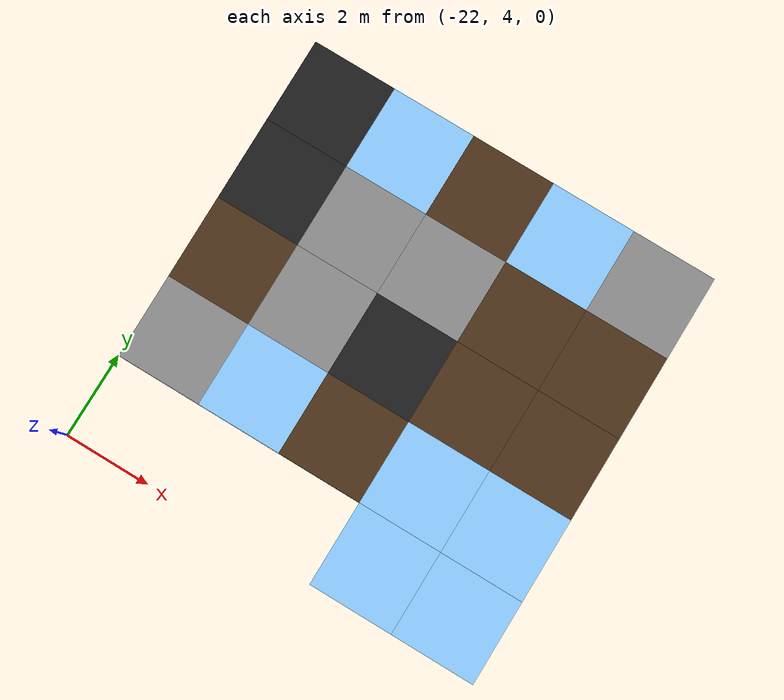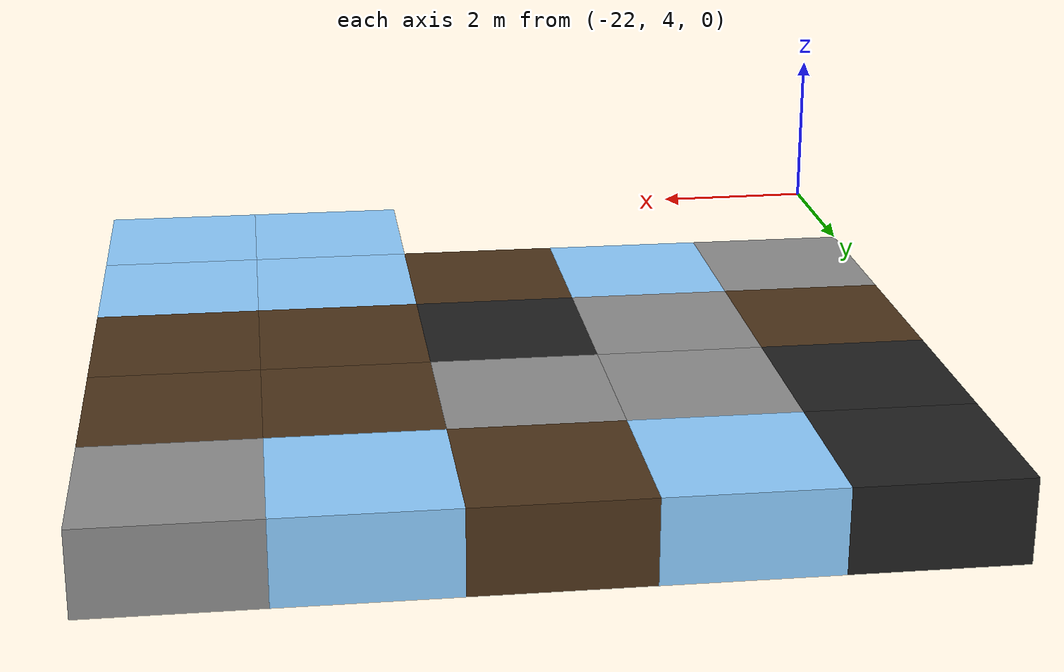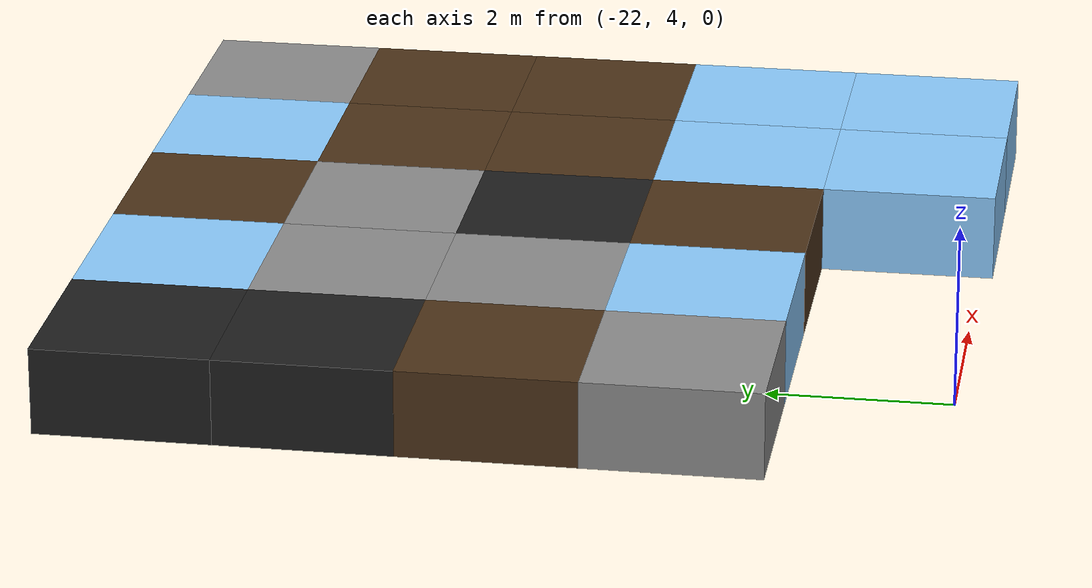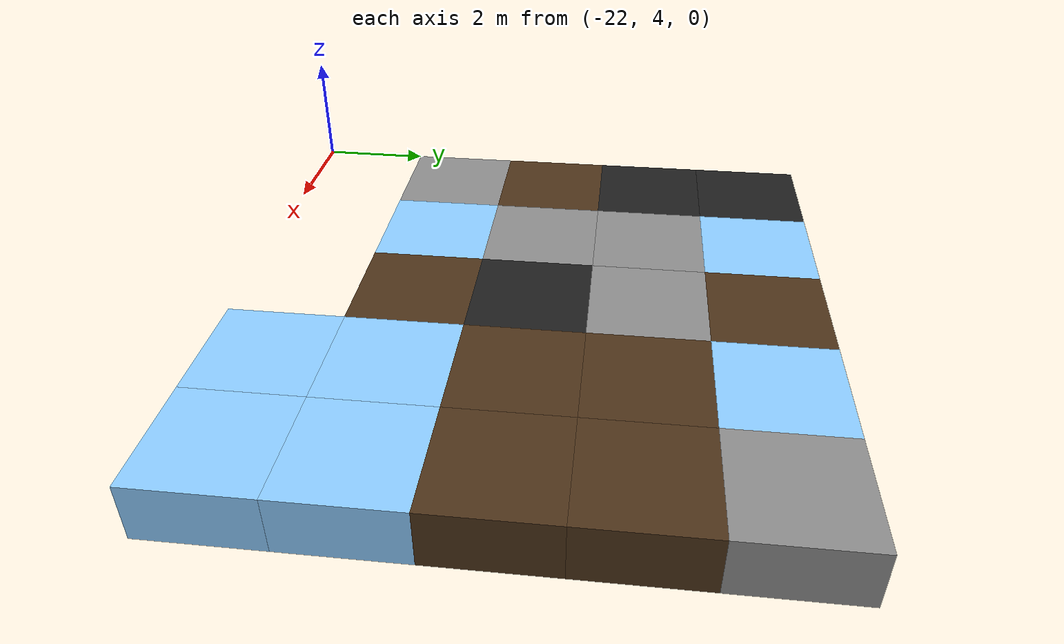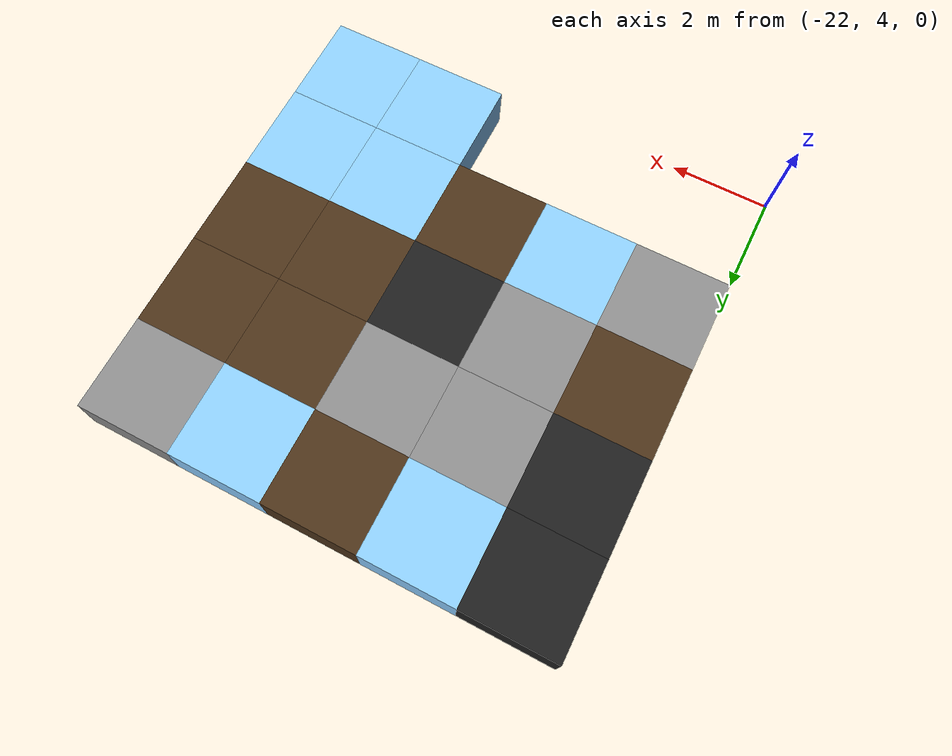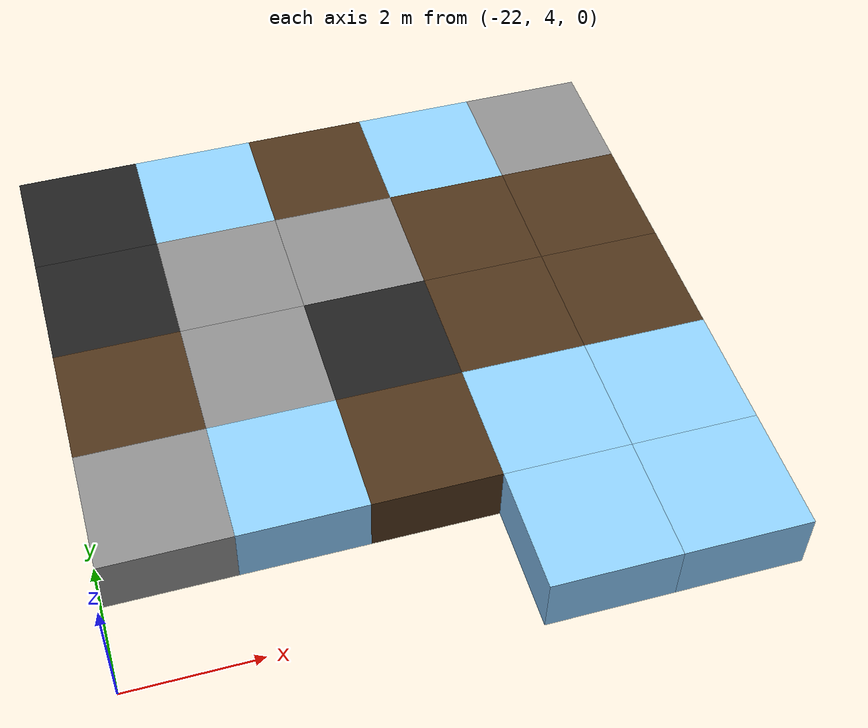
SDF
<sdf version="1.5">
 <world name="squares_example">
  <model name="tile_8_18">
   <static>true</static>
   <pose>-15.000 5.000 -0.500 0 0 0</pose>
   <link name="link">
    <collision name="col">
     <geometry><box><size>2.0 2.0 1.0</size></box></geometry>
     <surface>
      <friction>
       <ode><mu>0.03</mu><mu2>0.02</mu2><fdir1>1 0 0</fdir1><slip1>0.03</slip1><slip2>0.03</slip2></ode>
       <torsional>
        <coefficient>0.005</coefficient>
        <use_patch_radius>false</use_patch_radius>
        <surface_radius>0.12</surface_radius>
        <ode><slip>0.01</slip></ode>
       </torsional>
      </friction>
      <bounce><restitution_coefficient>0.0</restitution_coefficient><threshold>0.1</threshold></bounce>
      <contact>
       <ode><kp>10000000.0</kp><kd>1000.0</kd><max_vel>0.01</max_vel><min_depth>0.0</min_depth></ode>
      </contact>
     </surface>
    </collision>
    <visual name="visual">
     <geometry><box><size>2.0 2.0 1.0</size></box></geometry>
     <material>
      <diffuse>0.55 0.80 1.00 1</diffuse>
      <ambient>0 0 0 0</ambient>
      <specular>0 0 0 1</specular>
      <emissive>0 0 0 1</emissive>
     </material>
    </visual>
   </link>
  </model>
  <model name="tile_9_18">
   <static>true</static>
   <pose>-13.000 5.000 -0.500 0 0 0</pose>
   <link name="link">
    <collision name="col">
     <geometry><box><size>2.0 2.0 1.0</size></box></geometry>
     <surface>
      <friction>
       <ode><mu>0.03</mu><mu2>0.02</mu2><fdir1>1 0 0</fdir1><slip1>0.03</slip1><slip2>0.03</slip2></ode>
       <torsional>
        <coefficient>0.005</coefficient>
        <use_patch_radius>false</use_patch_radius>
        <surface_radius>0.12</surface_radius>
        <ode><slip>0.01</slip></ode>
       </torsional>
      </friction>
      <bounce><restitution_coefficient>0.0</restitution_coefficient><threshold>0.1</threshold></bounce>
      <contact>
       <ode><kp>10000000.0</kp><kd>1000.0</kd><max_vel>0.01</max_vel><min_depth>0.0</min_depth></ode>
      </contact>
     </surface>
    </collision>
    <visual name="visual">
     <geometry><box><size>2.0 2.0 1.0</size></box></geometry>
     <material>
      <diffuse>0.55 0.80 1.00 1</diffuse>
      <ambient>0 0 0 0</ambient>
      <specular>0 0 0 1</specular>
      <emissive>0 0 0 1</emissive>
     </material>
    </visual>
   </link>
  </model>
  <model name="tile_5_19">
   <static>true</static>
   <pose>-21.000 7.000 -0.500 0 0 0</pose>
   <link name="link">
    <collision name="col">
     <geometry><box><size>2.0 2.0 1.0</size></box></geometry>
     <surface>
      <friction>
       <ode><mu>0.8</mu><mu2>0.3</mu2><fdir1>1 0 0</fdir1><slip1>0.0</slip1><slip2>0.0</slip2></ode>
       <torsional>
        <coefficient>0.03</coefficient>
        <use_patch_radius>false</use_patch_radius>
        <surface_radius>0.12</surface_radius>
        <ode><slip>0.0</slip></ode>
       </torsional>
      </friction>
      <bounce><restitution_coefficient>0.0</restitution_coefficient><threshold>0.1</threshold></bounce>
      <contact>
       <ode><kp>10000000000.0</kp><kd>10000000.0</kd><max_vel>0.01</max_vel><min_depth>0.0</min_depth></ode>
      </contact>
     </surface>
    </collision>
    <visual name="visual">
     <geometry><box><size>2.0 2.0 1.0</size></box></geometry>
     <material>
      <diffuse>0.55 0.55 0.55 1</diffuse>
      <ambient>0 0 0 0</ambient>
      <specular>0 0 0 1</specular>
      <emissive>0 0 0 1</emissive>
     </material>
    </visual>
   </link>
  </model>
  <model name="tile_6_19">
   <static>true</static>
   <pose>-19.000 7.000 -0.500 0 0 0</pose>
   <link name="link">
    <collision name="col">
     <geometry><box><size>2.0 2.0 1.0</size></box></geometry>
     <surface>
      <friction>
       <ode><mu>0.03</mu><mu2>0.02</mu2><fdir1>1 0 0</fdir1><slip1>0.03</slip1><slip2>0.03</slip2></ode>
       <torsional>
        <coefficient>0.005</coefficient>
        <use_patch_radius>false</use_patch_radius>
        <surface_radius>0.12</surface_radius>
        <ode><slip>0.01</slip></ode>
       </torsional>
      </friction>
      <bounce><restitution_coefficient>0.0</restitution_coefficient><threshold>0.1</threshold></bounce>
      <contact>
       <ode><kp>10000000.0</kp><kd>1000.0</kd><max_vel>0.01</max_vel><min_depth>0.0</min_depth></ode>
      </contact>
     </surface>
    </collision>
    <visual name="visual">
     <geometry><box><size>2.0 2.0 1.0</size></box></geometry>
     <material>
      <diffuse>0.55 0.80 1.00 1</diffuse>
      <ambient>0 0 0 0</ambient>
      <specular>0 0 0 1</specular>
      <emissive>0 0 0 1</emissive>
     </material>
    </visual>
   </link>
  </model>
  <model name="tile_7_19">
   <static>true</static>
   <pose>-17.000 7.000 -0.500 0 0 0</pose>
   <link name="link">
    <collision name="col">
     <geometry><box><size>2.0 2.0 1.0</size></box></geometry>
     <surface>
      <friction>
       <ode><mu>0.6</mu><mu2>0.4</mu2><fdir1>1 0 0</fdir1><slip1>0.08</slip1><slip2>0.08</slip2></ode>
       <torsional>
        <coefficient>0.03</coefficient>
        <use_patch_radius>false</use_patch_radius>
        <surface_radius>0.12</surface_radius>
        <ode><slip>0.0</slip></ode>
       </torsional>
      </friction>
      <bounce><restitution_coefficient>0.0</restitution_coefficient><threshold>0.1</threshold></bounce>
      <contact>
       <ode><kp>1000000.0</kp><kd>10000.0</kd><max_vel>0.01</max_vel><min_depth>0.0</min_depth></ode>
      </contact>
     </surface>
    </collision>
    <visual name="visual">
     <geometry><box><size>2.0 2.0 1.0</size></box></geometry>
     <material>
      <diffuse>0.30 0.20 0.10 1</diffuse>
      <ambient>0 0 0 0</ambient>
      <specular>0 0 0 1</specular>
      <emissive>0 0 0 1</emissive>
     </material>
    </visual>
   </link>
  </model>
  <model name="tile_8_19">
   <static>true</static>
   <pose>-15.000 7.000 -0.500 0 0 0</pose>
   <link name="link">
    <collision name="col">
     <geometry><box><size>2.0 2.0 1.0</size></box></geometry>
     <surface>
      <friction>
       <ode><mu>0.03</mu><mu2>0.02</mu2><fdir1>1 0 0</fdir1><slip1>0.03</slip1><slip2>0.03</slip2></ode>
       <torsional>
        <coefficient>0.005</coefficient>
        <use_patch_radius>false</use_patch_radius>
        <surface_radius>0.12</surface_radius>
        <ode><slip>0.01</slip></ode>
       </torsional>
      </friction>
      <bounce><restitution_coefficient>0.0</restitution_coefficient><threshold>0.1</threshold></bounce>
      <contact>
       <ode><kp>10000000.0</kp><kd>1000.0</kd><max_vel>0.01</max_vel><min_depth>0.0</min_depth></ode>
      </contact>
     </surface>
    </collision>
    <visual name="visual">
     <geometry><box><size>2.0 2.0 1.0</size></box></geometry>
     <material>
      <diffuse>0.55 0.80 1.00 1</diffuse>
      <ambient>0 0 0 0</ambient>
      <specular>0 0 0 1</specular>
      <emissive>0 0 0 1</emissive>
     </material>
    </visual>
   </link>
  </model>
  <model name="tile_9_19">
   <static>true</static>
   <pose>-13.000 7.000 -0.500 0 0 0</pose>
   <link name="link">
    <collision name="col">
     <geometry><box><size>2.0 2.0 1.0</size></box></geometry>
     <surface>
      <friction>
       <ode><mu>0.03</mu><mu2>0.02</mu2><fdir1>1 0 0</fdir1><slip1>0.03</slip1><slip2>0.03</slip2></ode>
       <torsional>
        <coefficient>0.005</coefficient>
        <use_patch_radius>false</use_patch_radius>
        <surface_radius>0.12</surface_radius>
        <ode><slip>0.01</slip></ode>
       </torsional>
      </friction>
      <bounce><restitution_coefficient>0.0</restitution_coefficient><threshold>0.1</threshold></bounce>
      <contact>
       <ode><kp>10000000.0</kp><kd>1000.0</kd><max_vel>0.01</max_vel><min_depth>0.0</min_depth></ode>
      </contact>
     </surface>
    </collision>
    <visual name="visual">
     <geometry><box><size>2.0 2.0 1.0</size></box></geometry>
     <material>
      <diffuse>0.55 0.80 1.00 1</diffuse>
      <ambient>0 0 0 0</ambient>
      <specular>0 0 0 1</specular>
      <emissive>0 0 0 1</emissive>
     </material>
    </visual>
   </link>
  </model>
  <model name="tile_5_20">
   <static>true</static>
   <pose>-21.000 9.000 -0.500 0 0 0</pose>
   <link name="link">
    <collision name="col">
     <geometry><box><size>2.0 2.0 1.0</size></box></geometry>
     <surface>
      <friction>
       <ode><mu>0.6</mu><mu2>0.4</mu2><fdir1>1 0 0</fdir1><slip1>0.08</slip1><slip2>0.08</slip2></ode>
       <torsional>
        <coefficient>0.03</coefficient>
        <use_patch_radius>false</use_patch_radius>
        <surface_radius>0.12</surface_radius>
        <ode><slip>0.0</slip></ode>
       </torsional>
      </friction>
      <bounce><restitution_coefficient>0.0</restitution_coefficient><threshold>0.1</threshold></bounce>
      <contact>
       <ode><kp>1000000.0</kp><kd>10000.0</kd><max_vel>0.01</max_vel><min_depth>0.0</min_depth></ode>
      </contact>
     </surface>
    </collision>
    <visual name="visual">
     <geometry><box><size>2.0 2.0 1.0</size></box></geometry>
     <material>
      <diffuse>0.30 0.20 0.10 1</diffuse>
      <ambient>0 0 0 0</ambient>
      <specular>0 0 0 1</specular>
      <emissive>0 0 0 1</emissive>
     </material>
    </visual>
   </link>
  </model>
  <model name="tile_6_20">
   <static>true</static>
   <pose>-19.000 9.000 -0.500 0 0 0</pose>
   <link name="link">
    <collision name="col">
     <geometry><box><size>2.0 2.0 1.0</size></box></geometry>
     <surface>
      <friction>
       <ode><mu>0.8</mu><mu2>0.3</mu2><fdir1>1 0 0</fdir1><slip1>0.0</slip1><slip2>0.0</slip2></ode>
       <torsional>
        <coefficient>0.03</coefficient>
        <use_patch_radius>false</use_patch_radius>
        <surface_radius>0.12</surface_radius>
        <ode><slip>0.0</slip></ode>
       </torsional>
      </friction>
      <bounce><restitution_coefficient>0.0</restitution_coefficient><threshold>0.1</threshold></bounce>
      <contact>
       <ode><kp>10000000000.0</kp><kd>10000000.0</kd><max_vel>0.01</max_vel><min_depth>0.0</min_depth></ode>
      </contact>
     </surface>
    </collision>
    <visual name="visual">
     <geometry><box><size>2.0 2.0 1.0</size></box></geometry>
     <material>
      <diffuse>0.55 0.55 0.55 1</diffuse>
      <ambient>0 0 0 0</ambient>
      <specular>0 0 0 1</specular>
      <emissive>0 0 0 1</emissive>
     </material>
    </visual>
   </link>
  </model>
  <model name="tile_7_20">
   <static>true</static>
   <pose>-17.000 9.000 -0.500 0 0 0</pose>
   <link name="link">
    <collision name="col">
     <geometry><box><size>2.0 2.0 1.0</size></box></geometry>
     <surface>
      <friction>
       <ode><mu>0.4</mu><mu2>0.15</mu2><fdir1>1 0 0</fdir1><slip1>0.0</slip1><slip2>0.0</slip2></ode>
       <torsional>
        <coefficient>0.03</coefficient>
        <use_patch_radius>false</use_patch_radius>
        <surface_radius>0.12</surface_radius>
        <ode><slip>0.0</slip></ode>
       </torsional>
      </friction>
      <bounce><restitution_coefficient>0.0</restitution_coefficient><threshold>0.1</threshold></bounce>
      <contact>
       <ode><kp>1000000000.0</kp><kd>1000000.0</kd><max_vel>0.01</max_vel><min_depth>0.0</min_depth></ode>
      </contact>
     </surface>
    </collision>
    <visual name="visual">
     <geometry><box><size>2.0 2.0 1.0</size></box></geometry>
     <material>
      <diffuse>0.12 0.12 0.12 1</diffuse>
      <ambient>0 0 0 0</ambient>
      <specular>0 0 0 1</specular>
      <emissive>0 0 0 1</emissive>
     </material>
    </visual>
   </link>
  </model>
  <model name="tile_8_20">
   <static>true</static>
   <pose>-15.000 9.000 -0.500 0 0 0</pose>
   <link name="link">
    <collision name="col">
     <geometry><box><size>2.0 2.0 1.0</size></box></geometry>
     <surface>
      <friction>
       <ode><mu>0.6</mu><mu2>0.4</mu2><fdir1>1 0 0</fdir1><slip1>0.08</slip1><slip2>0.08</slip2></ode>
       <torsional>
        <coefficient>0.03</coefficient>
        <use_patch_radius>false</use_patch_radius>
        <surface_radius>0.12</surface_radius>
        <ode><slip>0.0</slip></ode>
       </torsional>
      </friction>
      <bounce><restitution_coefficient>0.0</restitution_coefficient><threshold>0.1</threshold></bounce>
      <contact>
       <ode><kp>1000000.0</kp><kd>10000.0</kd><max_vel>0.01</max_vel><min_depth>0.0</min_depth></ode>
      </contact>
     </surface>
    </collision>
    <visual name="visual">
     <geometry><box><size>2.0 2.0 1.0</size></box></geometry>
     <material>
      <diffuse>0.30 0.20 0.10 1</diffuse>
      <ambient>0 0 0 0</ambient>
      <specular>0 0 0 1</specular>
      <emissive>0 0 0 1</emissive>
     </material>
    </visual>
   </link>
  </model>
  <model name="tile_9_20">
   <static>true</static>
   <pose>-13.000 9.000 -0.500 0 0 0</pose>
   <link name="link">
    <collision name="col">
     <geometry><box><size>2.0 2.0 1.0</size></box></geometry>
     <surface>
      <friction>
       <ode><mu>0.6</mu><mu2>0.4</mu2><fdir1>1 0 0</fdir1><slip1>0.08</slip1><slip2>0.08</slip2></ode>
       <torsional>
        <coefficient>0.03</coefficient>
        <use_patch_radius>false</use_patch_radius>
        <surface_radius>0.12</surface_radius>
        <ode><slip>0.0</slip></ode>
       </torsional>
      </friction>
      <bounce><restitution_coefficient>0.0</restitution_coefficient><threshold>0.1</threshold></bounce>
      <contact>
       <ode><kp>1000000.0</kp><kd>10000.0</kd><max_vel>0.01</max_vel><min_depth>0.0</min_depth></ode>
      </contact>
     </surface>
    </collision>
    <visual name="visual">
     <geometry><box><size>2.0 2.0 1.0</size></box></geometry>
     <material>
      <diffuse>0.30 0.20 0.10 1</diffuse>
      <ambient>0 0 0 0</ambient>
      <specular>0 0 0 1</specular>
      <emissive>0 0 0 1</emissive>
     </material>
    </visual>
   </link>
  </model>
  <model name="tile_5_21">
   <static>true</static>
   <pose>-21.000 11.000 -0.500 0 0 0</pose>
   <link name="link">
    <collision name="col">
     <geometry><box><size>2.0 2.0 1.0</size></box></geometry>
     <surface>
      <friction>
       <ode><mu>0.4</mu><mu2>0.15</mu2><fdir1>1 0 0</fdir1><slip1>0.0</slip1><slip2>0.0</slip2></ode>
       <torsional>
        <coefficient>0.03</coefficient>
        <use_patch_radius>false</use_patch_radius>
        <surface_radius>0.12</surface_radius>
        <ode><slip>0.0</slip></ode>
       </torsional>
      </friction>
      <bounce><restitution_coefficient>0.0</restitution_coefficient><threshold>0.1</threshold></bounce>
      <contact>
       <ode><kp>1000000000.0</kp><kd>1000000.0</kd><max_vel>0.01</max_vel><min_depth>0.0</min_depth></ode>
      </contact>
     </surface>
    </collision>
    <visual name="visual">
     <geometry><box><size>2.0 2.0 1.0</size></box></geometry>
     <material>
      <diffuse>0.12 0.12 0.12 1</diffuse>
      <ambient>0 0 0 0</ambient>
      <specular>0 0 0 1</specular>
      <emissive>0 0 0 1</emissive>
     </material>
    </visual>
   </link>
  </model>
  <model name="tile_6_21">
   <static>true</static>
   <pose>-19.000 11.000 -0.500 0 0 0</pose>
   <link name="link">
    <collision name="col">
     <geometry><box><size>2.0 2.0 1.0</size></box></geometry>
     <surface>
      <friction>
       <ode><mu>0.8</mu><mu2>0.3</mu2><fdir1>1 0 0</fdir1><slip1>0.0</slip1><slip2>0.0</slip2></ode>
       <torsional>
        <coefficient>0.03</coefficient>
        <use_patch_radius>false</use_patch_radius>
        <surface_radius>0.12</surface_radius>
        <ode><slip>0.0</slip></ode>
       </torsional>
      </friction>
      <bounce><restitution_coefficient>0.0</restitution_coefficient><threshold>0.1</threshold></bounce>
      <contact>
       <ode><kp>10000000000.0</kp><kd>10000000.0</kd><max_vel>0.01</max_vel><min_depth>0.0</min_depth></ode>
      </contact>
     </surface>
    </collision>
    <visual name="visual">
     <geometry><box><size>2.0 2.0 1.0</size></box></geometry>
     <material>
      <diffuse>0.55 0.55 0.55 1</diffuse>
      <ambient>0 0 0 0</ambient>
      <specular>0 0 0 1</specular>
      <emissive>0 0 0 1</emissive>
     </material>
    </visual>
   </link>
  </model>
  <model name="tile_7_21">
   <static>true</static>
   <pose>-17.000 11.000 -0.500 0 0 0</pose>
   <link name="link">
    <collision name="col">
     <geometry><box><size>2.0 2.0 1.0</size></box></geometry>
     <surface>
      <friction>
       <ode><mu>0.8</mu><mu2>0.3</mu2><fdir1>1 0 0</fdir1><slip1>0.0</slip1><slip2>0.0</slip2></ode>
       <torsional>
        <coefficient>0.03</coefficient>
        <use_patch_radius>false</use_patch_radius>
        <surface_radius>0.12</surface_radius>
        <ode><slip>0.0</slip></ode>
       </torsional>
      </friction>
      <bounce><restitution_coefficient>0.0</restitution_coefficient><threshold>0.1</threshold></bounce>
      <contact>
       <ode><kp>10000000000.0</kp><kd>10000000.0</kd><max_vel>0.01</max_vel><min_depth>0.0</min_depth></ode>
      </contact>
     </surface>
    </collision>
    <visual name="visual">
     <geometry><box><size>2.0 2.0 1.0</size></box></geometry>
     <material>
      <diffuse>0.55 0.55 0.55 1</diffuse>
      <ambient>0 0 0 0</ambient>
      <specular>0 0 0 1</specular>
      <emissive>0 0 0 1</emissive>
     </material>
    </visual>
   </link>
  </model>
  <model name="tile_8_21">
   <static>true</static>
   <pose>-15.000 11.000 -0.500 0 0 0</pose>
   <link name="link">
    <collision name="col">
     <geometry><box><size>2.0 2.0 1.0</size></box></geometry>
     <surface>
      <friction>
       <ode><mu>0.6</mu><mu2>0.4</mu2><fdir1>1 0 0</fdir1><slip1>0.08</slip1><slip2>0.08</slip2></ode>
       <torsional>
        <coefficient>0.03</coefficient>
        <use_patch_radius>false</use_patch_radius>
        <surface_radius>0.12</surface_radius>
        <ode><slip>0.0</slip></ode>
       </torsional>
      </friction>
      <bounce><restitution_coefficient>0.0</restitution_coefficient><threshold>0.1</threshold></bounce>
      <contact>
       <ode><kp>1000000.0</kp><kd>10000.0</kd><max_vel>0.01</max_vel><min_depth>0.0</min_depth></ode>
      </contact>
     </surface>
    </collision>
    <visual name="visual">
     <geometry><box><size>2.0 2.0 1.0</size></box></geometry>
     <material>
      <diffuse>0.30 0.20 0.10 1</diffuse>
      <ambient>0 0 0 0</ambient>
      <specular>0 0 0 1</specular>
      <emissive>0 0 0 1</emissive>
     </material>
    </visual>
   </link>
  </model>
  <model name="tile_9_21">
   <static>true</static>
   <pose>-13.000 11.000 -0.500 0 0 0</pose>
   <link name="link">
    <collision name="col">
     <geometry><box><size>2.0 2.0 1.0</size></box></geometry>
     <surface>
      <friction>
       <ode><mu>0.6</mu><mu2>0.4</mu2><fdir1>1 0 0</fdir1><slip1>0.08</slip1><slip2>0.08</slip2></ode>
       <torsional>
        <coefficient>0.03</coefficient>
        <use_patch_radius>false</use_patch_radius>
        <surface_radius>0.12</surface_radius>
        <ode><slip>0.0</slip></ode>
       </torsional>
      </friction>
      <bounce><restitution_coefficient>0.0</restitution_coefficient><threshold>0.1</threshold></bounce>
      <contact>
       <ode><kp>1000000.0</kp><kd>10000.0</kd><max_vel>0.01</max_vel><min_depth>0.0</min_depth></ode>
      </contact>
     </surface>
    </collision>
    <visual name="visual">
     <geometry><box><size>2.0 2.0 1.0</size></box></geometry>
     <material>
      <diffuse>0.30 0.20 0.10 1</diffuse>
      <ambient>0 0 0 0</ambient>
      <specular>0 0 0 1</specular>
      <emissive>0 0 0 1</emissive>
     </material>
    </visual>
   </link>
  </model>
  <model name="tile_5_22">
   <static>true</static>
   <pose>-21.000 13.000 -0.500 0 0 0</pose>
   <link name="link">
    <collision name="col">
     <geometry><box><size>2.0 2.0 1.0</size></box></geometry>
     <surface>
      <friction>
       <ode><mu>0.4</mu><mu2>0.15</mu2><fdir1>1 0 0</fdir1><slip1>0.0</slip1><slip2>0.0</slip2></ode>
       <torsional>
        <coefficient>0.03</coefficient>
        <use_patch_radius>false</use_patch_radius>
        <surface_radius>0.12</surface_radius>
        <ode><slip>0.0</slip></ode>
       </torsional>
      </friction>
      <bounce><restitution_coefficient>0.0</restitution_coefficient><threshold>0.1</threshold></bounce>
      <contact>
       <ode><kp>1000000000.0</kp><kd>1000000.0</kd><max_vel>0.01</max_vel><min_depth>0.0</min_depth></ode>
      </contact>
     </surface>
    </collision>
    <visual name="visual">
     <geometry><box><size>2.0 2.0 1.0</size></box></geometry>
     <material>
      <diffuse>0.12 0.12 0.12 1</diffuse>
      <ambient>0 0 0 0</ambient>
      <specular>0 0 0 1</specular>
      <emissive>0 0 0 1</emissive>
     </material>
    </visual>
   </link>
  </model>
  <model name="tile_6_22">
   <static>true</static>
   <pose>-19.000 13.000 -0.500 0 0 0</pose>
   <link name="link">
    <collision name="col">
     <geometry><box><size>2.0 2.0 1.0</size></box></geometry>
     <surface>
      <friction>
       <ode><mu>0.03</mu><mu2>0.02</mu2><fdir1>1 0 0</fdir1><slip1>0.03</slip1><slip2>0.03</slip2></ode>
       <torsional>
        <coefficient>0.005</coefficient>
        <use_patch_radius>false</use_patch_radius>
        <surface_radius>0.12</surface_radius>
        <ode><slip>0.01</slip></ode>
       </torsional>
      </friction>
      <bounce><restitution_coefficient>0.0</restitution_coefficient><threshold>0.1</threshold></bounce>
      <contact>
       <ode><kp>10000000.0</kp><kd>1000.0</kd><max_vel>0.01</max_vel><min_depth>0.0</min_depth></ode>
      </contact>
     </surface>
    </collision>
    <visual name="visual">
     <geometry><box><size>2.0 2.0 1.0</size></box></geometry>
     <material>
      <diffuse>0.55 0.80 1.00 1</diffuse>
      <ambient>0 0 0 0</ambient>
      <specular>0 0 0 1</specular>
      <emissive>0 0 0 1</emissive>
     </material>
    </visual>
   </link>
  </model>
  <model name="tile_7_22">
   <static>true</static>
   <pose>-17.000 13.000 -0.500 0 0 0</pose>
   <link name="link">
    <collision name="col">
     <geometry><box><size>2.0 2.0 1.0</size></box></geometry>
     <surface>
      <friction>
       <ode><mu>0.6</mu><mu2>0.4</mu2><fdir1>1 0 0</fdir1><slip1>0.08</slip1><slip2>0.08</slip2></ode>
       <torsional>
        <coefficient>0.03</coefficient>
        <use_patch_radius>false</use_patch_radius>
        <surface_radius>0.12</surface_radius>
        <ode><slip>0.0</slip></ode>
       </torsional>
      </friction>
      <bounce><restitution_coefficient>0.0</restitution_coefficient><threshold>0.1</threshold></bounce>
      <contact>
       <ode><kp>1000000.0</kp><kd>10000.0</kd><max_vel>0.01</max_vel><min_depth>0.0</min_depth></ode>
      </contact>
     </surface>
    </collision>
    <visual name="visual">
     <geometry><box><size>2.0 2.0 1.0</size></box></geometry>
     <material>
      <diffuse>0.30 0.20 0.10 1</diffuse>
      <ambient>0 0 0 0</ambient>
      <specular>0 0 0 1</specular>
      <emissive>0 0 0 1</emissive>
     </material>
    </visual>
   </link>
  </model>
  <model name="tile_8_22">
   <static>true</static>
   <pose>-15.000 13.000 -0.500 0 0 0</pose>
   <link name="link">
    <collision name="col">
     <geometry><box><size>2.0 2.0 1.0</size></box></geometry>
     <surface>
      <friction>
       <ode><mu>0.03</mu><mu2>0.02</mu2><fdir1>1 0 0</fdir1><slip1>0.03</slip1><slip2>0.03</slip2></ode>
       <torsional>
        <coefficient>0.005</coefficient>
        <use_patch_radius>false</use_patch_radius>
        <surface_radius>0.12</surface_radius>
        <ode><slip>0.01</slip></ode>
       </torsional>
      </friction>
      <bounce><restitution_coefficient>0.0</restitution_coefficient><threshold>0.1</threshold></bounce>
      <contact>
       <ode><kp>10000000.0</kp><kd>1000.0</kd><max_vel>0.01</max_vel><min_depth>0.0</min_depth></ode>
      </contact>
     </surface>
    </collision>
    <visual name="visual">
     <geometry><box><size>2.0 2.0 1.0</size></box></geometry>
     <material>
      <diffuse>0.55 0.80 1.00 1</diffuse>
      <ambient>0 0 0 0</ambient>
      <specular>0 0 0 1</specular>
      <emissive>0 0 0 1</emissive>
     </material>
    </visual>
   </link>
  </model>
  <model name="tile_9_22">
   <static>true</static>
   <pose>-13.000 13.000 -0.500 0 0 0</pose>
   <link name="link">
    <collision name="col">
     <geometry><box><size>2.0 2.0 1.0</size></box></geometry>
     <surface>
      <friction>
       <ode><mu>0.8</mu><mu2>0.3</mu2><fdir1>1 0 0</fdir1><slip1>0.0</slip1><slip2>0.0</slip2></ode>
       <torsional>
        <coefficient>0.03</coefficient>
        <use_patch_radius>false</use_patch_radius>
        <surface_radius>0.12</surface_radius>
        <ode><slip>0.0</slip></ode>
       </torsional>
      </friction>
      <bounce><restitution_coefficient>0.0</restitution_coefficient><threshold>0.1</threshold></bounce>
      <contact>
       <ode><kp>10000000000.0</kp><kd>10000000.0</kd><max_vel>0.01</max_vel><min_depth>0.0</min_depth></ode>
      </contact>
     </surface>
    </collision>
    <visual name="visual">
     <geometry><box><size>2.0 2.0 1.0</size></box></geometry>
     <material>
      <diffuse>0.55 0.55 0.55 1</diffuse>
      <ambient>0 0 0 0</ambient>
      <specular>0 0 0 1</specular>
      <emissive>0 0 0 1</emissive>
     </material>
    </visual>
   </link>
  </model>
 </world>
</sdf>
